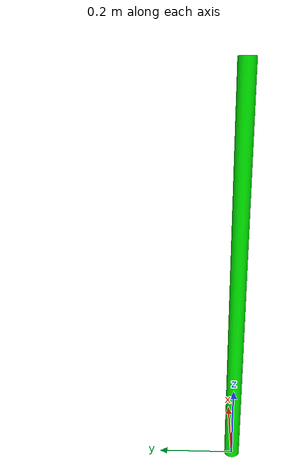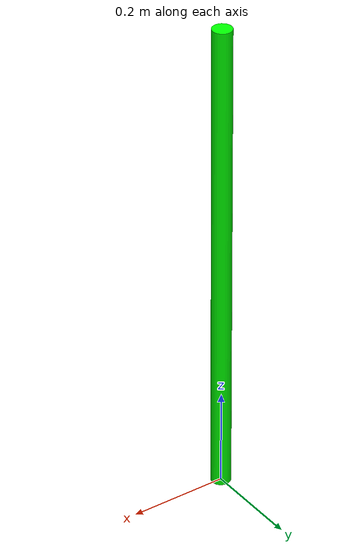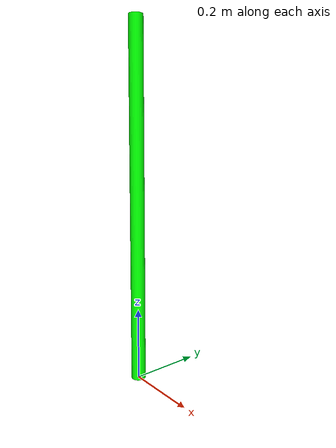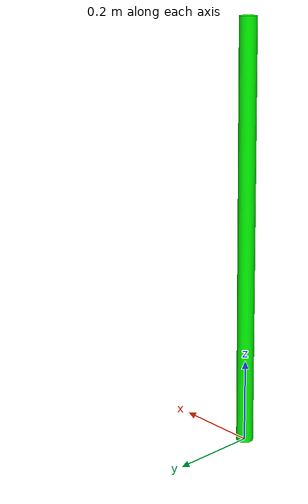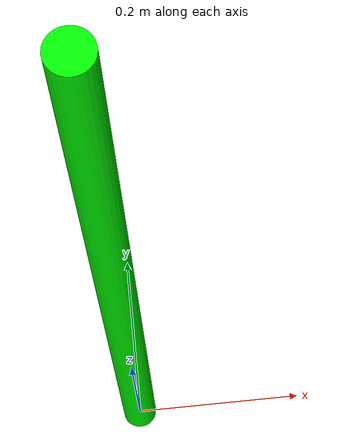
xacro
<?xml version="1.0"?>
<robot name="xacroTest" xmlns:xacro="http://www.ros.org/wiki/xacro">

  <!-- Optional parameters (makes it reusable later) -->
  <xacro:property name="link_radius" value="0.02"/>
  <xacro:property name="link_length" value="1.0"/>
  <xacro:property name="link_height_offset" value="0.5"/>

  <!-- Base link -->
  <link name="base_link">

    <visual>
      <origin xyz="0 0 ${link_height_offset}" rpy="0 0 0"/>
      <geometry>
        <cylinder radius="${link_radius}" length="${link_length}"/>
      </geometry>

      <material name="green">
        <color rgba="0 1 0 1"/>
      </material>
    </visual>

    <!-- (Recommended for MoveIt) collision geometry -->
    <collision>
      <origin xyz="0 0 ${link_height_offset}" rpy="0 0 0"/>
      <geometry>
        <cylinder radius="${link_radius}" length="${link_length}"/>
      </geometry>
    </collision>

      <xacro:include filename="../../meshes/testxacro/table.xacro"/>

  </link>

</robot>

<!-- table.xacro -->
<robot xmlns:xacro="http://www.ros.org/wiki/xacro" name="table">

  <link name="table_link">

    <visual>
      <geometry>
        <mesh filename="package://my_robot_description/meshes/WoodPlate_Bench_700x1500x900.stl"/>
      </geometry>

      <material name="gray">
        <color rgba="0.7 0.7 0.7 1.0"/>
      </material>
    </visual>

    <collision>
      <geometry>
        <box size="1.5 0.7 0.05"/>
      </geometry>
    </collision>

  </link>

</robot>
